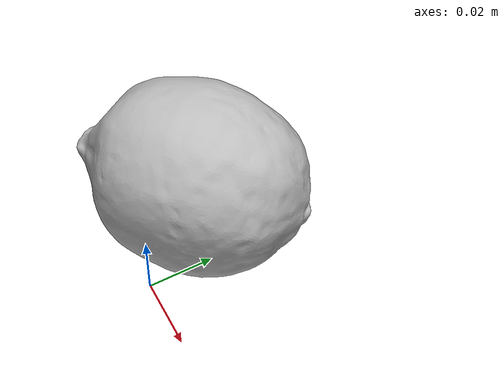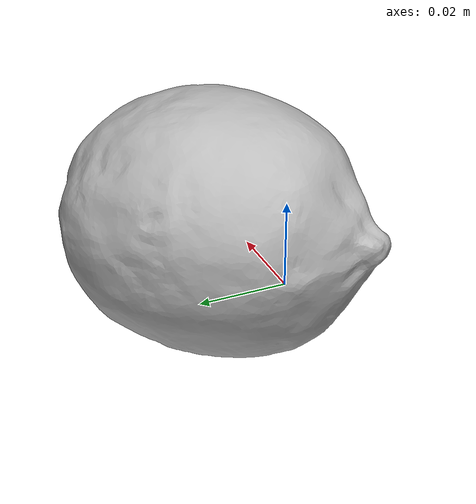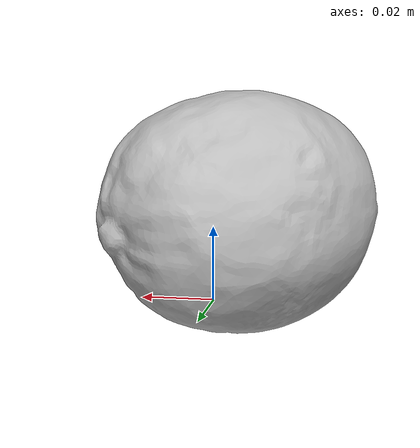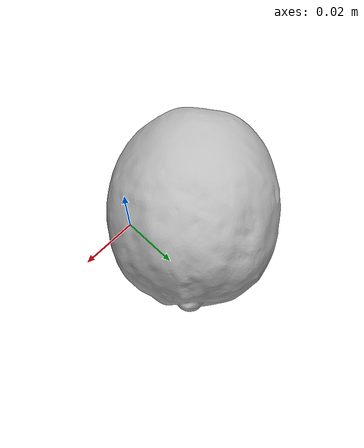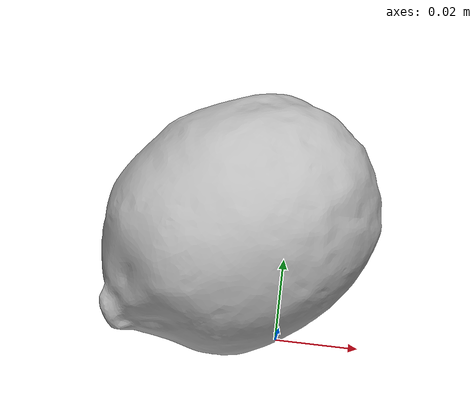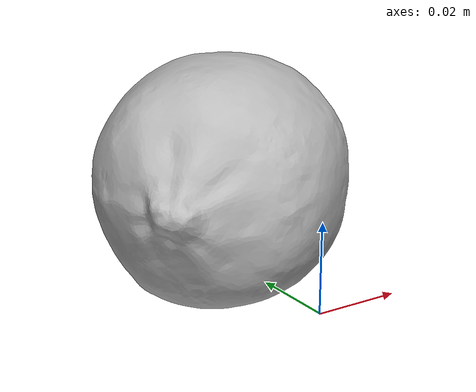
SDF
<?xml version='1.0'?>
<sdf version="1.4">
  <model name="lemon">
    <static>false</static>
    <link name="link">
      <inertial>
        <pose>-0.010770493044399383 0.02101421821337594 0.026208533597256233 -1.5558996786745078 0.5892078304576457 2.280778784701682</pose>
        <mass>9.683451845782233e-05</mass>
        <inertia>
          <ixx>3.410857984541028e-08</ixx>
          <ixy>-6.992497149759378e-24</ixy>
          <ixz>-7.394106691771603e-24</ixz>
          <iyy>3.3937180810016105e-08</iyy>
          <iyz>5.7074194353807895e-24</iyz>
          <izz>2.7857744491230307e-08</izz>
        </inertia>
      </inertial>
      <collision name="collision">
        <geometry>
          <mesh>
            <!-- Use a downsampled mesh for collisions -->
            <uri>model://014_lemon/google_16k/014_lemon.obj</uri>
            </mesh>
        </geometry>
        <surface>
          <friction>
            <ode>
              <mu>0.9</mu>
              <mu2>0.9</mu2>
            </ode>
          </friction>
          <contact>
            <ode>
              <kp>1000000000000.0</kp>
              <kd>1</kd>
              <min_depth>0.0001</min_depth>
              <max_vel>0.01</max_vel>
            </ode>
          </contact>
          <bounce>
            <restitution_coefficient>0.1</restitution_coefficient>
            <threshold>1000.0</threshold>
          </bounce>
        </surface>
      </collision>
      <visual name="visual">
        <geometry>
          <mesh>
            <uri>model://014_lemon/google_16k/014_lemon.dae</uri>
            </mesh>
        </geometry>
      </visual>
    </link>
  </model>
</sdf>
